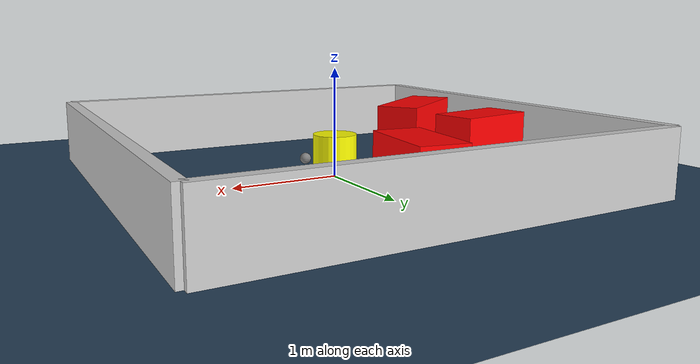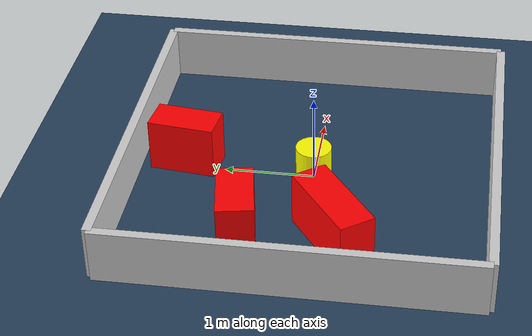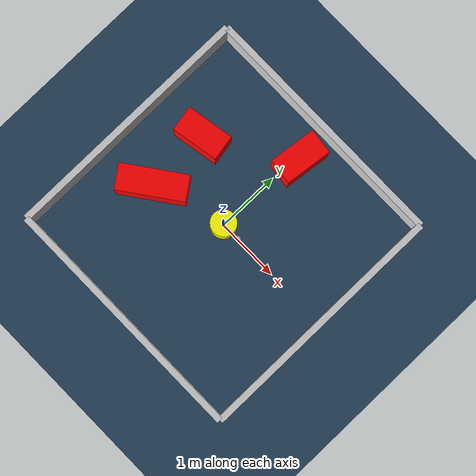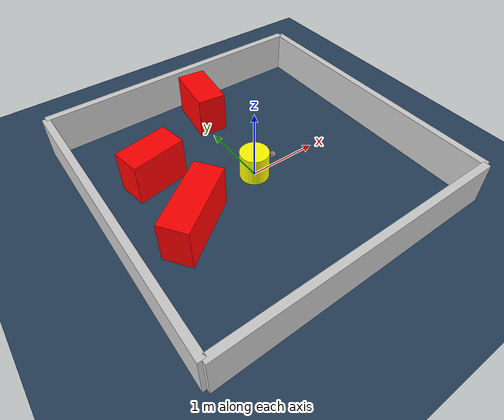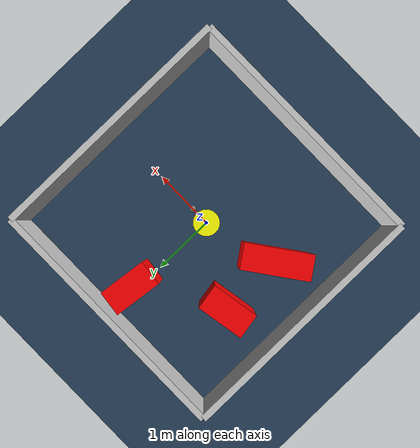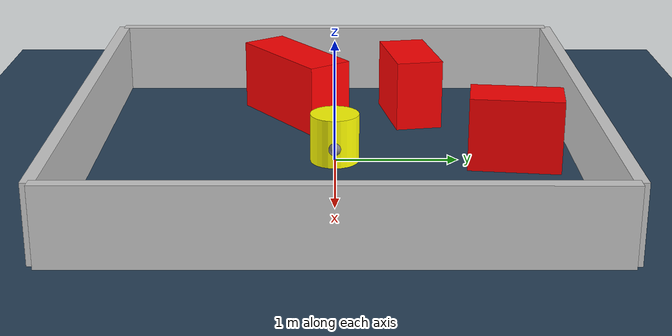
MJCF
<?xml version="1.0" ?>
<mujoco model="generated_environment">
  <option timestep="0.01" integrator="RK4" cone="elliptic"/>
  <default>
    <geom density="1"/>
  </default>
  <asset>
    <texture builtin="gradient" height="3072" rgb1="0.3 0.5 0.7" rgb2="0 0 0" type="skybox" width="512"/>
    <texture builtin="checker" height="300" mark="edge" markrgb="0.8 0.8 0.8" name="groundplane" rgb1="0.2 0.3 0.4" rgb2="0.1 0.2 0.3" type="2d" width="300"/>
    <material name="groundplane" reflectance="0.2" texrepeat="5 5" texture="groundplane" texuniform="true"/>
    <material name="robot" rgba="0.0 1.0 0.0 1"/>
  </asset>
  <worldbody>
    <light dir="0 0 -1" directional="true" pos="0 0 1.5"/>
    <geom condim="4" friction="1.0 0.005 0.001" material="groundplane" name="floor" size="0 0 0.05" type="plane"/>
    <body name="walls">
      <geom name="wall_1" condim="4" pos="-2.0 0.0 0.3" rgba="0.800000011920929 0.800000011920929 0.800000011920929 1.0" size="0.05 2.0 0.3" type="box"/>
      <geom name="wall_2" condim="4" pos="2.0 0.0 0.3" rgba="0.800000011920929 0.800000011920929 0.800000011920929 1.0" size="0.05 2.0 0.3" type="box"/>
      <geom name="wall_3" condim="4" pos="0.0 -2.0 0.3" rgba="0.800000011920929 0.800000011920929 0.800000011920929 1.0" size="2.0 0.05 0.3" type="box"/>
      <geom name="wall_4" condim="4" pos="0.0 2.0 0.3" rgba="0.800000011920929 0.800000011920929 0.800000011920929 1.0" size="2.0 0.05 0.3" type="box"/>
    </body>
    <body name="robot">
      <joint name="joint_x" type="slide" pos="0 0 0" axis="1 0 0"/>
      <joint name="joint_y" type="slide" pos="0 0 0" axis="0 1 0"/>
      <geom name="robot" type="sphere" pos="0.3 0.0 0.2" size="0.05" mass="5." friction="1.0 0.005 0.0001" condim="4" rgba="0.5 0.5 0.5 1.0"/>
      <site name="sensor_ball"/>
    </body>
    <body name="obstacle_movable_1">
      <geom name="obstacle_movable_1" condim="4" pos="0.0 0.0 0.2" euler="0 0 0.0" friction="1.0 0.005 0.001" rgba="1.0 1.0 0.0 1.0" size="0.2 0.2 0.0" type="cylinder" mass="0.1"/>
      <joint type="free"/>
    </body>
    <body name="obstacle_2_static">
      <geom name="obstacle_2_static" condim="4" pos="-1.13563653542511 0.671582575716984 0.3" euler="0 0 190.03949398985307" friction="1.0 0.005 0.001" rgba="1 0 0 1" size="0.37224502265133713 0.2 0.3" type="box"/>
    </body>
    <body name="obstacle_3_static">
      <geom name="obstacle_3_static" condim="4" pos="0.08981326435648418 1.4515572384517277 0.3" euler="0 0 82.97891674783293" friction="1.0 0.005 0.001" rgba="1 0 0 1" size="0.37234332490015276 0.2 0.3" type="box"/>
    </body>
    <body name="obstacle_4_static">
      <geom name="obstacle_4_static" condim="4" pos="-1.1233776820048733 -0.34253868931792764 0.3" euler="0 0 35.995304524601416" friction="1.0 0.005 0.001" rgba="1 0 0 1" size="0.5216892453054488 0.2 0.3" type="box"/>
    </body>
  </worldbody>
  <actuator>
    <motor name="actuator_x" joint="joint_x" gear="1" ctrlrange="-1 1"/>
    <motor name="actuator_y" joint="joint_y" gear="1" ctrlrange="-1 1"/>
  </actuator>
</mujoco>
